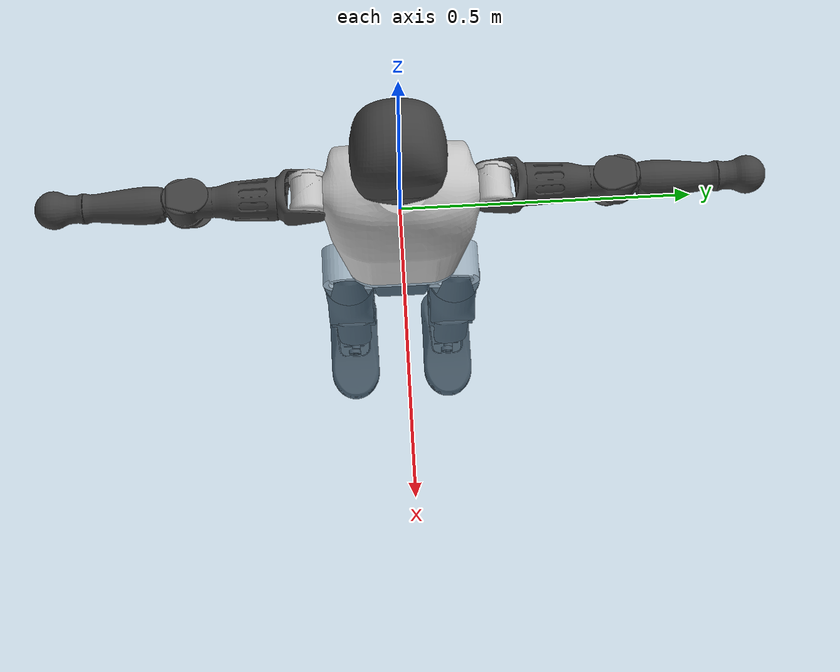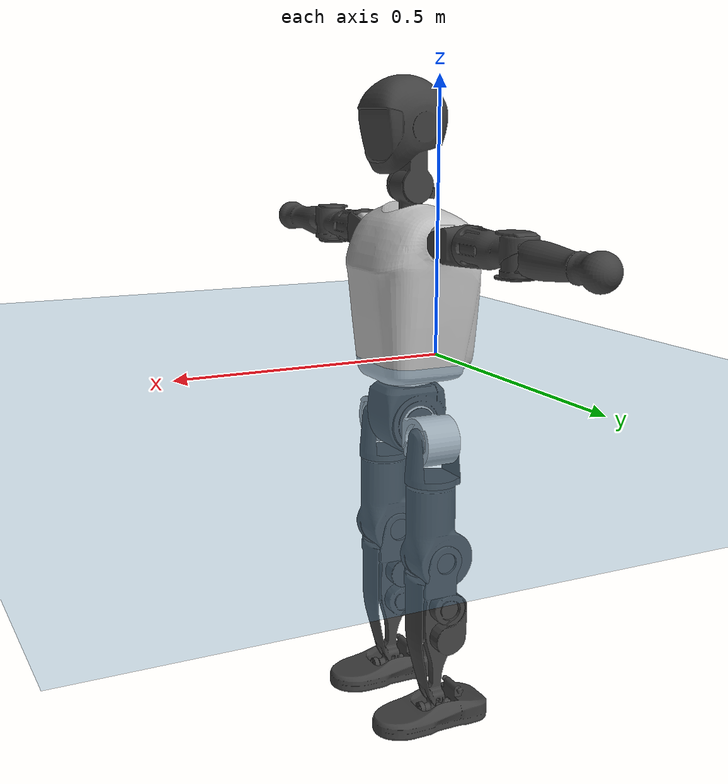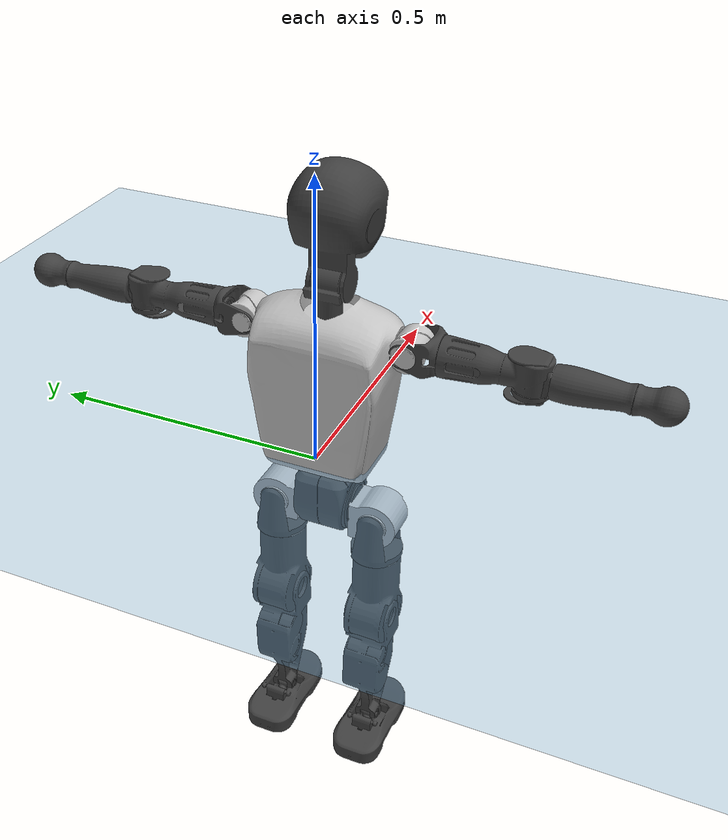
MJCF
<mujoco model="T1">
  <compiler angle="radian" assetdir="assets" balanceinertia="true" inertiafromgeom="false"/>

  <option timestep="0.005" density="1.2" viscosity="2e-05"/>

  <size nkey="1"/>

  <visual>
    <quality shadowsize="8192"/>
    <map shadowclip="0.5"/>
  </visual>

  <default>
    <default class="/">
      <joint armature="0.01" damping="0.01" frictionloss="0.1"/>
      <geom contype="0" conaffinity="0" group="1" solref="-1000 -80"/>
      <site size="0.01 0.005 0.005" group="5"/>
      <general forcelimited="true" biastype="affine" gainprm="25" biasprm="0 -25 -0.6"/>
      <default class="t1">
        <geom rgba="0.25 0.25 0.25 1"/>
        <default class="visual">
          <geom type="mesh" group="2"/>
        </default>
        <default class="collision">
          <geom group="3"/>
        </default>
        <default class="foot">
          <geom size="0.1115 0.05 0.015" type="box" condim="6" group="4" priority="1" solimp="0.015 1 0.015"/>
        </default>
        <default class="reward_collision_sphere">
          <geom group="5" rgba="1 0 0 1"/>
        </default>
      </default>
    </default>
  </default>

  <asset>
    <texture type="skybox" colorspace="auto" name="//unnamed_texture_0" builtin="gradient" rgb1="0.95 0.95 0.95" rgb2="0.95 0.95 0.95" width="100" height="600"/>
    <texture type="2d" colorspace="auto" name="texplane" builtin="checker" rgb1="0.345 0.575 0.748" rgb2="0.345 0.575 0.748" markrgb="1 1 1" width="512" height="512"/>
    <material name="MatPlane" class="/" texture="texplane" texuniform="true" texrepeat="2 2" specular="0.9"/>
    <mesh name="Trunk" class="/" file="Trunk.stl"/>
    <mesh name="H1" class="/" file="H1.stl"/>
    <mesh name="H2" class="/" file="H2.stl"/>
    <mesh name="AL1" class="/" file="AL1.stl"/>
    <mesh name="AL2" class="/" file="AL2.stl"/>
    <mesh name="AL3" class="/" file="AL3.stl"/>
    <mesh name="left_hand_link" class="/" file="left_hand_link.stl"/>
    <mesh name="AR1" class="/" file="AR1.stl"/>
    <mesh name="AR2" class="/" file="AR2.stl"/>
    <mesh name="AR3" class="/" file="AR3.stl"/>
    <mesh name="right_hand_link" class="/" file="right_hand_link.stl"/>
    <mesh name="Waist" class="/" file="Waist.stl"/>
    <mesh name="Hip_Pitch_Left" class="/" file="Hip_Pitch_Left.stl"/>
    <mesh name="Hip_Roll_Left" class="/" file="Hip_Roll_Left.stl"/>
    <mesh name="Hip_Yaw_Left" class="/" file="Hip_Yaw_Left.stl"/>
    <mesh name="Shank_Left" class="/" file="Shank_Left.stl"/>
    <mesh name="Ankle_Cross_Left" class="/" file="Ankle_Cross_Left.stl"/>
    <mesh name="left_foot_link" class="/" file="left_foot_link.stl"/>
    <mesh name="Hip_Pitch_Right" class="/" file="Hip_Pitch_Right.stl"/>
    <mesh name="Hip_Roll_Right" class="/" file="Hip_Roll_Right.stl"/>
    <mesh name="Hip_Yaw_Right" class="/" file="Hip_Yaw_Right.stl"/>
    <mesh name="Shank_Right" class="/" file="Shank_Right.stl"/>
    <mesh name="Ankle_Cross_Right" class="/" file="Ankle_Cross_Right.stl"/>
    <mesh name="right_foot_link" class="/" file="right_foot_link.stl"/>
  </asset>

  <worldbody>
    <geom name="floor" class="/" size="100 100 0.125" type="plane" group="0" material="MatPlane"/>
    <light name="toplight_shadow" class="/" pos="0 0 5" dir="0.0990148 0.0990148 -0.990148" type="directional" ambient="0.04 0.04 0.04" diffuse="0.55 0.55 0.55" specular="0.12 0.12 0.12"/>
    <light name="toplight_fill" class="/" pos="0 0 5" dir="0.0990148 0.0990148 -0.990148" type="directional" castshadow="false" ambient="0.04 0.04 0.04" diffuse="0.3 0.3 0.3" specular="0.08 0.08 0.08"/>
    <body name="trunk" childclass="t1" pos="1.31843e-05 -0.000161182 0.000463122" quat="1 0.000523283 -2.92019e-05 0.000649759">
      <inertial pos="0.0515742 -0.000189302 0.107098" quat="0.999968 -0.00534195 -0.00409019 -0.00435029" mass="10.066" diaginertia="0.0708585 0.0461853 0.0624913"/>
      <joint name="//unnamed_joint_0" type="free" armature="0" damping="0" frictionloss="0"/>
      <geom name="//unnamed_geom_1" class="visual" rgba="0.76 0.76 0.76 1" mesh="Trunk"/>
      <geom name="//unnamed_geom_2" class="collision" size="0.071507 0.0953426 0.143014" pos="0.0563292 0 0.122128" type="box"/>
      <geom name="//unnamed_geom_3" class="reward_collision_sphere" size="0.109644" pos="0.0563292 0 0.101774"/>
      <geom name="//unnamed_geom_4" class="reward_collision_sphere" size="0.0143014" pos="0.0563292 0.0768163 0"/>
      <geom name="//unnamed_geom_5" class="reward_collision_sphere" size="0.0143014" pos="0.0563292 -0.0768163 0"/>
      <geom name="//unnamed_geom_6" class="reward_collision_sphere" size="0.0143014" pos="0.0563292 0.0966981 0.183193"/>
      <geom name="//unnamed_geom_7" class="reward_collision_sphere" size="0.0143014" pos="0.0563292 -0.0966981 0.183193"/>
      <site name="imu" pos="0.00753715 -0.0003464 -0.00713989" size="0.00953426"/>
      <camera name="track" pos="0 -1.80744 0" quat="0.707107 0.707107 0 0" mode="trackcom"/>
      <camera name="ego_camera" pos="0.114536 0 0.42745" quat="-0.5 -0.5 0.5 0.5"/>
      <body name="H1" pos="0.0558824 -0.000480111 0.244716" quat="1 -0.000237933 0.000100464 -1.11328e-05">
        <inertial pos="-0.000658976 -0.00178945 0.0584098" quat="0.763869 -0.0131253 0.00169595 0.645235" mass="0.382296" diaginertia="0.000173492 0.000132177 0.000163776"/>
        <joint name="AAHead_yaw" pos="0 0 0" axis="0.00334619 -0.000782037 0.999994" range="-1.53868 1.58161" armature="0.0107445" damping="0.0104478" frictionloss="0.106923"/>
        <geom name="//unnamed_geom_8" class="visual" mesh="H1"/>
        <body name="H2" pos="-0.000531419 -0.00286916 0.0640721" quat="1 -0.000232066 -1.2694e-05 0.000197048">
          <inertial pos="0.0084339 -0.00170802 0.09775" quat="0.98743 0.104927 -0.0814645 -0.0856479" mass="0.548726" diaginertia="0.00149287 0.00112919 0.00188653"/>
          <joint name="Head_pitch" pos="0 0 0" axis="-0.00115925 -0.999985 -0.0053123" range="-1.21852 0.369202" armature="0.0098816" damping="0" frictionloss="0.0940279"/>
          <geom name="//unnamed_geom_9" class="visual" mesh="H2"/>
          <geom name="//unnamed_geom_10" class="collision" size="0.0762741" pos="0.00938821 0 0.111951"/>
          <geom name="//unnamed_geom_11" class="reward_collision_sphere" size="0.0858084" pos="0.0187764 0 0.101774"/>
        </body>
      </body>
      <body name="AL1" pos="0.0541984 0.09793 0.220558" quat="0.999999 -0.00113406 -0.000226843 0.00037116">
        <inertial pos="-0.00209922 0.0407095 -0.000460023" quat="0.504242 0.495699 -0.504224 0.495763" mass="0.457057" diaginertia="0.000993692 0.000751345 0.000309602"/>
        <joint name="Left_Shoulder_Pitch" pos="0 0 0" axis="-0.00299865 0.999933 -0.0111938" stiffness="0.00291476" range="-3.31558 1.27379" armature="0.00962934" damping="0" frictionloss="0.0966424"/>
        <geom name="//unnamed_geom_12" class="visual" rgba="0.76 0.76 0.76 1" mesh="AL1"/>
        <body name="AL2" pos="-0.0010062 0.042276 -0.00068261" quat="1 2.05993e-05 -0.000363639 0.00017116">
          <inertial pos="0.00406433 0.0367771 -0.000398239" quat="0.486124 0.51101 -0.488764 0.513481" mass="0.139765" diaginertia="0.000297222 0.000207933 0.000193856"/>
          <joint name="Left_Shoulder_Roll" pos="0 0 0" axis="-0.999999 0.000845923 -0.000966481" range="-1.57153 1.74916" armature="0.0107905" damping="0.00910833" frictionloss="0.0958125"/>
          <geom name="//unnamed_geom_13" class="visual" mesh="AL2"/>
          <body name="AL3" pos="5.94833e-05 0.0548226 0.00026711" quat="1 -0.000295512 0.000468128 -0.000162098">
            <inertial pos="0.00190248 0.0745813 -0.00109496" quat="0.708057 0.706155 0.000937824 0.000179565" mass="0.837141" diaginertia="0.00941819 0.00759145 0.000647839"/>
            <joint name="Left_Elbow_Pitch" pos="0 0 0" axis="-9.8597e-05 -1 0.000414384" range="-2.32624 2.27962" armature="0.0108245" damping="0.0126512" frictionloss="0.0930367"/>
            <geom name="//unnamed_geom_14" class="visual" mesh="AL3"/>
            <geom name="//unnamed_geom_15" class="collision" size="0.0286028 0.071507" pos="0 0.045186 0" quat="0.707105 0.707108 0 0" type="cylinder"/>
            <geom name="//unnamed_geom_16" class="reward_collision_sphere" size="0.0343233"/>
            <body name="left_hand_link" pos="0.0017389 0.132209 -0.000564389" quat="0.999999 -0.000858246 -0.000620614 -0.000703026">
              <inertial pos="-0.00263726 0.0987884 0.000636427" quat="0.704509 0.709691 0.000995139 -0.00215477" mass="0.283419" diaginertia="0.00575791 0.00485976 0.000241118"/>
              <joint name="Left_Elbow_Yaw" pos="0 0 0" axis="0.00181515 -0.00195898 0.999996" range="-2.45172 -0.0488426" armature="0.00971955" damping="0.0118121" frictionloss="0.0960695"/>
              <geom name="//unnamed_geom_17" class="visual" mesh="left_hand_link"/>
              <geom name="//unnamed_geom_18" class="collision" size="0.0286028 0.0834248" pos="0 0.117484 0" quat="0.707105 0.707108 0 0" type="cylinder"/>
              <geom name="//unnamed_geom_19" class="reward_collision_sphere" size="0.0476713"/>
              <geom name="//unnamed_geom_20" class="reward_collision_sphere" size="0.0333699" pos="0 0.0994093 0"/>
              <geom name="//unnamed_geom_21" class="reward_collision_sphere" size="0.0333699" pos="0 0.1943 0"/>
            </body>
          </body>
        </body>
      </body>
      <body name="AR1" pos="0.0529249 -0.0974755 0.221145" quat="1 6.16092e-05 0.000431722 -0.000451472">
        <inertial pos="-0.00180071 -0.0435204 0.000772341" quat="0.506082 0.497414 -0.503965 0.492422" mass="0.441173" diaginertia="0.000969567 0.000752936 0.000308686"/>
        <joint name="Right_Shoulder_Pitch" pos="0 0 0" axis="0.00210078 -0.999893 -0.0145011" range="-1.22815 3.30469" armature="0.0106249" damping="0.0137452" frictionloss="0.0955969"/>
        <geom name="//unnamed_geom_22" class="visual" rgba="0.76 0.76 0.76 1" mesh="AR1"/>
        <body name="AR2" pos="0.00213205 -0.0400874 -0.000693597" quat="0.999999 -0.000175865 0.000562081 0.0012364">
          <inertial pos="0.00272172 -0.033736 0.00138819" quat="0.512801 0.487986 -0.51116 0.487464" mass="0.134587" diaginertia="0.000293119 0.000214949 0.000195589"/>
          <joint name="Right_Shoulder_Roll" pos="0 0 0" axis="-0.999983 -0.00386878 0.00442495" range="-1.75409 1.55434" armature="0.00935453" damping="0.00507683" frictionloss="0.107886"/>
          <geom name="//unnamed_geom_23" class="visual" mesh="AR2"/>
          <body name="AR3" pos="0.000451446 -0.055996 -0.00260322" quat="1 -3.7638e-05 3.17764e-05 2.2632e-05">
            <inertial pos="0.000190205 -0.079721 0.000600571" quat="0.7066 0.707522 0.00971454 -0.00591495" mass="0.88045" diaginertia="0.00934684 0.00778379 0.000694876"/>
            <joint name="Right_Elbow_Pitch" pos="0 0 0" axis="-0.0108244 0.999938 0.00244064" range="-2.31753 2.25538" armature="0.00825129" damping="0.00751594" frictionloss="0.100569"/>
            <geom name="//unnamed_geom_24" class="visual" mesh="AR3"/>
            <geom name="//unnamed_geom_25" class="collision" size="0.0286028 0.071507" pos="0 -0.045186 0" quat="0.707105 0.707108 0 0" type="cylinder"/>
            <geom name="//unnamed_geom_26" class="reward_collision_sphere" size="0.0343233"/>
            <body name="right_hand_link" pos="-0.000925353 -0.133075 -0.00184839" quat="1 -0.000905795 0.000106161 -3.72749e-05">
              <inertial pos="7.65585e-05 -0.0988251 0.00356738" quat="0.706479 0.707734 -3.39647e-05 -0.000454533" mass="0.285928" diaginertia="0.00593942 0.00492949 0.000234792"/>
              <joint name="Right_Elbow_Yaw" pos="0 0 0" axis="-0.000663903 -0.00148478 0.999999" range="-0.0117195 2.46092" armature="0.0107511" damping="0" frictionloss="0.103024"/>
              <geom name="//unnamed_geom_27" class="visual" mesh="right_hand_link"/>
              <geom name="//unnamed_geom_28" class="collision" size="0.0286028 0.0834248" pos="0 -0.117484 0" quat="0.707105 0.707108 0 0" type="cylinder"/>
              <geom name="//unnamed_geom_29" class="reward_collision_sphere" size="0.0476713"/>
              <geom name="//unnamed_geom_30" class="reward_collision_sphere" size="0.0333699" pos="0 -0.0994093 0"/>
              <geom name="//unnamed_geom_31" class="reward_collision_sphere" size="0.0333699" pos="0 -0.1943 0"/>
            </body>
          </body>
        </body>
      </body>
      <body name="Waist" pos="0.058907 -0.00350361 -0.114656" quat="1 0.000169396 0.000228207 -7.05258e-05">
        <inertial pos="3.9394e-05 0.000408402 0.00679369" quat="0.982204 -0.00283422 -0.187716 -0.00552351" mass="2.166" diaginertia="0.00376781 0.00307523 0.00502882"/>
        <joint name="Waist" pos="0 0 0" axis="-0.0116029 0.00263525 0.999929" range="-1.58473 1.52253" armature="0.0098149" damping="0.0138714" frictionloss="0.106273"/>
        <geom name="//unnamed_geom_32" class="visual" mesh="Waist"/>
        <body name="Hip_Pitch_Left" pos="0.00088594 0.0967119 7.25571e-05" quat="1 -3.60192e-05 7.12191e-05 -0.000158151">
          <inertial pos="0.000537913 -0.00729987 -0.019194" quat="0.97601 0.217424 0.0113748 0.00112388" mass="0.888381" diaginertia="0.00131459 0.000912243 0.00137076"/>
          <joint name="Left_Hip_Pitch" pos="0 0 0" axis="0.0150608 0.999886 0.000577511" range="-1.80592 1.62283" armature="0.00969696" damping="0" frictionloss="0.0933566"/>
          <geom name="//unnamed_geom_33" class="visual" rgba="0.76 0.76 0.76 1" mesh="Hip_Pitch_Left"/>
          <body name="Hip_Roll_Left" pos="0.00114726 0.0023401 -0.0189918" quat="0.999999 0.000327354 0.00109297 0.00101537">
            <inertial pos="-0.000914719 -0.000156221 -0.0552187" quat="0.705492 -0.00263621 -0.00346405 0.708705" mass="0.326439" diaginertia="0.00126708 0.000890576 0.000543315"/>
            <joint name="Left_Hip_Roll" pos="0 0 0" axis="-0.999943 -0.00862483 0.00622846" stiffness="0.005408" range="-1.57621 0.198453" armature="0.0094847" damping="0.0128351" frictionloss="0.0993629"/>
            <geom name="//unnamed_geom_34" class="visual" mesh="Hip_Roll_Left"/>
            <geom name="//unnamed_geom_35" class="reward_collision_sphere" size="0.0524384"/>
            <body name="Hip_Yaw_Left" pos="0.000316019 -0.000604693 -0.0838416" quat="1 -8.8395e-05 0.000287366 -7.21335e-05">
              <inertial pos="-0.00585307 -0.00168128 -0.0912565" quat="0.700762 -0.0258392 -0.0400441 0.711802" mass="1.82869" diaginertia="0.0186469 0.0148734 0.00274467"/>
              <joint name="Left_Hip_Yaw" pos="0 0 0" axis="0.00117761 -0.00387608 -0.999992" range="-1.0434 0.998873" armature="0.00954733" damping="0.00850191" frictionloss="0.096576"/>
              <geom name="//unnamed_geom_36" class="visual" mesh="Hip_Yaw_Left"/>
              <geom name="//unnamed_geom_37" class="collision" size="0.0476713 0.0762741" type="cylinder"/>
              <body name="Shank_Left" pos="-0.0115229 -0.00216348 -0.136872" quat="1 0.000143645 -8.08035e-05 4.33693e-05">
                <inertial pos="-0.00496948 -0.00120486 -0.12691" quat="0.997165 0.00659474 -0.0184862 0.07264" mass="1.52359" diaginertia="0.0255497 0.0209547 0.00198501"/>
                <joint name="Left_Knee_Pitch" pos="0 0 0" axis="0.00610399 0.999979 0.00226069" range="-0.0185641 2.33536" armature="0.0106965" damping="0" frictionloss="0.100384"/>
                <geom name="//unnamed_geom_38" class="visual" mesh="Shank_Left"/>
                <geom name="//unnamed_geom_39" class="collision" size="0.0476713 0.071507" pos="0 0 -0.122128" type="cylinder"/>
                <geom name="//unnamed_geom_40" class="reward_collision_sphere" size="0.0619727"/>
                <body name="Ankle_Cross_Left" pos="0.00141154 0.00152339 -0.287527" quat="0.999999 0.000654903 -0.000272679 -0.00103343">
                  <inertial pos="-0.00328478 -0.00239233 -0.00801082" quat="0.440383 0.558133 0.546969 0.442014" mass="0.0629148" diaginertia="2.10116e-05 1.58027e-05 1.25248e-05"/>
                  <joint name="Left_Ankle_Pitch" pos="0 0 0" axis="-0.0042298 0.999978 0.00503436" range="-0.879675 0.329472" armature="0.00997209" damping="0.0057521" frictionloss="0.0967161"/>
                  <geom name="//unnamed_geom_41" class="visual" mesh="Ankle_Cross_Left"/>
                  <body name="left_foot_link" pos="-0.00221105 -0.00273694 -0.0118863" quat="1 -3.13831e-05 8.87861e-07 2.25076e-06">
                    <inertial pos="0.0021002 -0.000294188 -0.0065908" quat="0.000564181 0.619686 0.0050477 0.784833" mass="0.60351" diaginertia="0.0020168 0.00144369 0.00243925"/>
                    <joint name="Left_Ankle_Roll" pos="0 0 0" axis="-1 6.45682e-05 -0.000142653" stiffness="0.00495995" range="-0.439097 0.438487" armature="0.00828262" damping="0.00500365" frictionloss="0.095422"/>
                    <geom name="//unnamed_geom_42" class="visual" mesh="left_foot_link"/>
                    <geom name="left_foot" class="foot" size="0.104699 0.0469382 0.013632" pos="0.00938821 0 -0.0152661"/>
                    <geom name="//unnamed_geom_44" class="reward_collision_sphere" size="0.0495782" pos="0.00938821 0 -0.0152661"/>
                    <geom name="//unnamed_geom_45" class="reward_collision_sphere" size="0.0286028" pos="0.089188 -0.0207856 -0.0152661"/>
                    <geom name="//unnamed_geom_46" class="reward_collision_sphere" size="0.0286028" pos="-0.0657174 -0.0207856 -0.0152661"/>
                    <site name="left_foot" class="foot" pos="0.00938821 0 -0.0152661" size="0.00953426"/>
                  </body>
                </body>
              </body>
            </body>
          </body>
        </body>
        <body name="Hip_Pitch_Right" pos="-0.00239694 -0.0956167 -0.000925359" quat="0.999999 0.00116626 0.000431347 -0.000847308">
          <inertial pos="0.00104385 0.00418615 -0.0180642" quat="0.972904 -0.230664 0.014184 -0.00707475" mass="0.866434" diaginertia="0.00127346 0.000859617 0.00133521"/>
          <joint name="Right_Hip_Pitch" pos="0 0 0" axis="-0.000601902 -0.999999 -0.00134399" range="-1.60272 1.79339" armature="0.00954307" damping="0.013029" frictionloss="0.107885"/>
          <geom name="//unnamed_geom_47" class="visual" rgba="0.76 0.76 0.76 1" mesh="Hip_Pitch_Right"/>
          <body name="Hip_Roll_Right" pos="-0.000881328 0.000605139 -0.0195628" quat="1 0.000127109 -9.98155e-05 5.32423e-05">
            <inertial pos="-0.00138313 0.00252745 -0.0572241" quat="0.706779 -0.00513536 -0.00507735 0.707398" mass="0.334592" diaginertia="0.00128855 0.000907425 0.000557639"/>
            <joint name="Right_Hip_Roll" pos="0 0 0" axis="-0.999987 0.000771325 0.00500764" stiffness="0.00214709" range="-0.208561 1.56891" armature="0.00942461" damping="0.00734978" frictionloss="0.0946224"/>
            <geom name="//unnamed_geom_48" class="visual" mesh="Hip_Roll_Right"/>
            <geom name="//unnamed_geom_49" class="reward_collision_sphere" size="0.0524384"/>
            <body name="Hip_Yaw_Right" pos="-0.00035291 -0.00155206 -0.0816942" quat="1 -0.000221672 -0.000167618 -0.000152698">
              <inertial pos="-0.00562771 -0.00126274 -0.092003" quat="0.714514 -0.0308078 -0.0337949 0.698125" mass="1.857" diaginertia="0.0191473 0.0151464 0.0028715"/>
              <joint name="Right_Hip_Yaw" pos="0 0 0" axis="-0.00438685 -0.00466431 -0.999979" stiffness="0.004719" range="-0.981246 0.958465" armature="0.008302" damping="0.0185304" frictionloss="0.107521"/>
              <geom name="//unnamed_geom_50" class="visual" mesh="Hip_Yaw_Right"/>
              <geom name="//unnamed_geom_51" class="collision" size="0.0476713 0.0762741" type="cylinder"/>
              <body name="Shank_Right" pos="-0.0128591 0.00221323 -0.136427" quat="0.999999 -0.000903644 -0.000816148 0.000336194">
                <inertial pos="-0.00573266 0.00176209 -0.122245" quat="0.999392 -0.00252893 -0.0158679 -0.0309491" mass="1.51111" diaginertia="0.0253794 0.0209356 0.00221409"/>
                <joint name="Right_Knee_Pitch" pos="0 0 0" axis="-0.0033995 -0.999994 -0.000599786" range="-2.296 -0.0495422" armature="0.00978917" damping="0.0142532" frictionloss="0.0986922"/>
                <geom name="//unnamed_geom_52" class="visual" mesh="Shank_Right"/>
                <geom name="//unnamed_geom_53" class="collision" size="0.0476713 0.071507" pos="0 0 -0.122128" type="cylinder"/>
                <geom name="//unnamed_geom_54" class="reward_collision_sphere" size="0.0619727"/>
                <body name="Ankle_Cross_Right" pos="0.00129075 -0.00284375 -0.285462" quat="0.999999 -0.000909884 -0.000948846 4.75612e-05">
                  <inertial pos="-0.002757 0.00106358 -0.00634573" quat="0.44205 0.552443 0.551085 0.442385" mass="0.063682" diaginertia="2.08612e-05 1.54714e-05 1.20439e-05"/>
                  <joint name="Right_Ankle_Pitch" pos="0 0 0" axis="-0.00746315 -0.999971 -0.00141891" range="-0.394667 0.876766" armature="0.00973602" damping="0.00728954" frictionloss="0.0971545"/>
                  <geom name="//unnamed_geom_55" class="visual" mesh="Ankle_Cross_Right"/>
                  <body name="right_foot_link" pos="0.000821635 -0.00320076 -0.0121323" quat="1 0.00011499 0.000314344 0.000110526">
                    <inertial pos="-0.000538825 -0.00111046 -0.0113963" quat="-0.00355466 0.6179 -0.00132432 0.786248" mass="0.600316" diaginertia="0.00197547 0.00143417 0.00234825"/>
                    <joint name="Right_Ankle_Roll" pos="0 0 0" axis="-0.999986 0.00430567 -0.00294529" range="-0.386346 0.446472" armature="0.0106076" damping="0.00645579" frictionloss="0.0882519"/>
                    <geom name="//unnamed_geom_56" class="visual" mesh="right_foot_link"/>
                    <geom name="right_foot" class="foot" size="0.0853167 0.0460947 0.0133425" pos="0.00938821 0 -0.0152661"/>
                    <geom name="//unnamed_geom_58" class="reward_collision_sphere" size="0.0381371"/>
                    <geom name="//unnamed_geom_59" class="reward_collision_sphere" size="0.0286028" pos="0.00938821 0 -0.0152661"/>
                    <geom name="//unnamed_geom_60" class="reward_collision_sphere" size="0.0286028" pos="0.089188 0.0207856 -0.0152661"/>
                    <geom name="//unnamed_geom_61" class="reward_collision_sphere" size="0.0286028" pos="-0.0657174 0.0207856 -0.0152661"/>
                    <site name="right_foot" class="foot" pos="0.00938821 0 -0.0152661" size="0.00953426"/>
                  </body>
                </body>
              </body>
            </body>
          </body>
        </body>
      </body>
    </body>
  </worldbody>

  <contact>
    <pair class="/" geom1="floor" geom2="left_foot" name="//unnamed_contact_0"/>
    <pair class="/" geom1="floor" geom2="right_foot" name="//unnamed_contact_1"/>
  </contact>

  <actuator>
    <general name="AAHead_yaw" class="/" joint="AAHead_yaw" forcerange="-6.52014 6.52014" gainprm="24.4371" biasprm="0 -24.4371 -0.579884"/>
    <general name="Head_pitch" class="/" joint="Head_pitch" forcerange="-7.01518 7.01518" gainprm="24.4371" biasprm="0 -24.4371 -0.579884"/>
    <general name="Left_Shoulder_Pitch" class="/" joint="Left_Shoulder_Pitch" forcerange="-17.6314 17.6314" gainprm="24.4371" biasprm="0 -24.4371 -0.579884"/>
    <general name="Left_Shoulder_Roll" class="/" joint="Left_Shoulder_Roll" forcerange="-18.5102 18.5102" gainprm="24.4371" biasprm="0 -24.4371 -0.579884"/>
    <general name="Left_Elbow_Pitch" class="/" joint="Left_Elbow_Pitch" forcerange="-17.0571 17.0571" gainprm="24.4371" biasprm="0 -24.4371 -0.579884"/>
    <general name="Left_Elbow_Yaw" class="/" joint="Left_Elbow_Yaw" forcerange="-17.6188 17.6188" gainprm="24.4371" biasprm="0 -24.4371 -0.579884"/>
    <general name="Right_Shoulder_Pitch" class="/" joint="Right_Shoulder_Pitch" forcerange="-17.2031 17.2031" gainprm="24.4371" biasprm="0 -24.4371 -0.579884"/>
    <general name="Right_Shoulder_Roll" class="/" joint="Right_Shoulder_Roll" forcerange="-17.7606 17.7606" gainprm="24.4371" biasprm="0 -24.4371 -0.579884"/>
    <general name="Right_Elbow_Pitch" class="/" joint="Right_Elbow_Pitch" forcerange="-16.4748 16.4748" gainprm="24.4371" biasprm="0 -24.4371 -0.579884"/>
    <general name="Right_Elbow_Yaw" class="/" joint="Right_Elbow_Yaw" forcerange="-17.8387 17.8387" gainprm="24.4371" biasprm="0 -24.4371 -0.579884"/>
    <general name="Waist" class="/" joint="Waist" forcerange="-26.4099 26.4099" gainprm="24.4371" biasprm="0 -24.4371 -0.579884"/>
    <general name="Left_Hip_Pitch" class="/" joint="Left_Hip_Pitch" forcerange="-44.3446 44.3446" gainprm="24.4371" biasprm="0 -24.4371 -0.579884"/>
    <general name="Left_Hip_Roll" class="/" joint="Left_Hip_Roll" forcerange="-28.2344 28.2344" gainprm="24.4371" biasprm="0 -24.4371 -0.579884"/>
    <general name="Left_Hip_Yaw" class="/" joint="Left_Hip_Yaw" forcerange="-29.5799 29.5799" gainprm="24.4371" biasprm="0 -24.4371 -0.579884"/>
    <general name="Left_Knee_Pitch" class="/" joint="Left_Knee_Pitch" forcerange="-52.274 52.274" gainprm="24.4371" biasprm="0 -24.4371 -0.579884"/>
    <general name="Left_Ankle_Pitch" class="/" joint="Left_Ankle_Pitch" forcerange="-20.9737 20.9737" gainprm="24.4371" biasprm="0 -24.4371 -0.579884"/>
    <general name="Left_Ankle_Roll" class="/" joint="Left_Ankle_Roll" forcerange="-12.9074 12.9074" gainprm="24.4371" biasprm="0 -24.4371 -0.579884"/>
    <general name="Right_Hip_Pitch" class="/" joint="Right_Hip_Pitch" forcerange="-43.2371 43.2371" gainprm="24.4371" biasprm="0 -24.4371 -0.579884"/>
    <general name="Right_Hip_Roll" class="/" joint="Right_Hip_Roll" forcerange="-26.3483 26.3483" gainprm="24.4371" biasprm="0 -24.4371 -0.579884"/>
    <general name="Right_Hip_Yaw" class="/" joint="Right_Hip_Yaw" forcerange="-31.4078 31.4078" gainprm="24.4371" biasprm="0 -24.4371 -0.579884"/>
    <general name="Right_Knee_Pitch" class="/" joint="Right_Knee_Pitch" forcerange="-55.0355 55.0355" gainprm="24.4371" biasprm="0 -24.4371 -0.579884"/>
    <general name="Right_Ankle_Pitch" class="/" joint="Right_Ankle_Pitch" forcerange="-19.1664 19.1664" gainprm="24.4371" biasprm="0 -24.4371 -0.579884"/>
    <general name="Right_Ankle_Roll" class="/" joint="Right_Ankle_Roll" forcerange="-14.4969 14.4969" gainprm="24.4371" biasprm="0 -24.4371 -0.579884"/>
  </actuator>

  <sensor>
    <gyro site="imu" name="imu_angular_velocity"/>
    <velocimeter site="imu" name="imu_linear_velocity"/>
    <framelinvel objtype="site" objname="left_foot" name="left_foot_global_linear_velocity"/>
    <framelinvel objtype="site" objname="right_foot" name="right_foot_global_linear_velocity"/>
  </sensor>

  <keyframe>
    <key name="home" qpos="0 0 0.6385 1 0 0 0 0 0 0 1.4 0 -0.4 0 -1.4 0 0.4 0 -0.4 0 0 0.8 -0.4 0 0.4 0 0 -0.8 0.4 0"/>
  </keyframe>
</mujoco>
